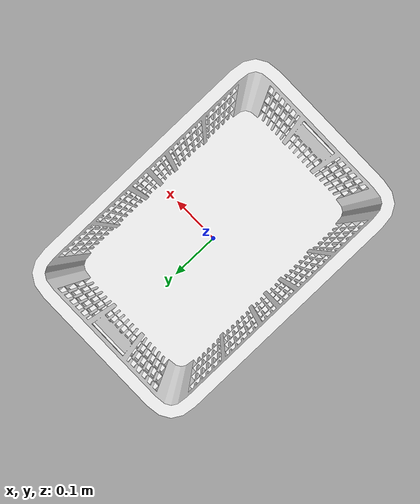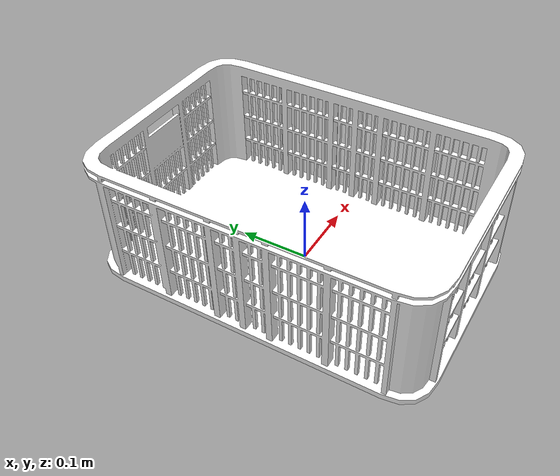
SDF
<?xml version='1.0'?>
<sdf version="1.5">
  <model name="crate">
    <pose>0 0 0 0 0 0</pose>
    <static>true</static>
    <link name="link">
      <inertial>
        <mass>10.0</mass>
        </inertial>
      <collision name="collision">
        <geometry>
          <mesh>
            <uri>model://crate/meshes/crate.dae</uri>
          </mesh>
        </geometry>
      </collision>
      <visual name="visual">
        <pose frame=''> 0 0 0 0 0 0</pose>
        <geometry>
          <mesh>
            <uri>model://crate/meshes/crate.dae</uri>
          </mesh>
        </geometry>
      </visual>
    </link>
  </model>
</sdf>
